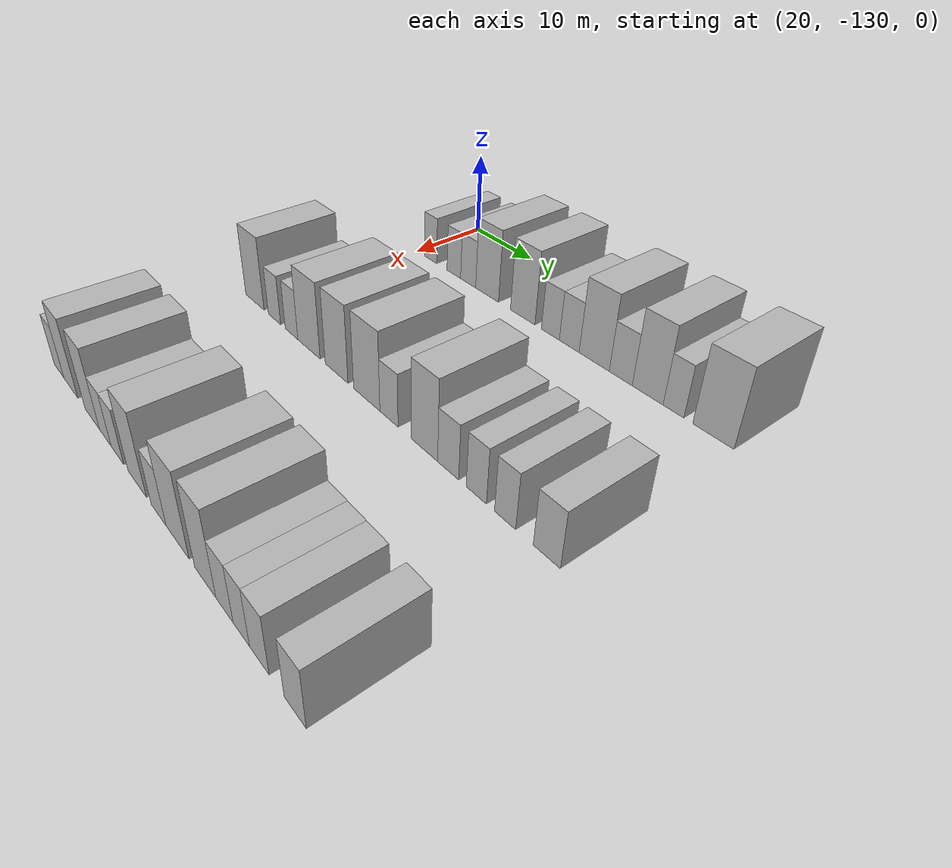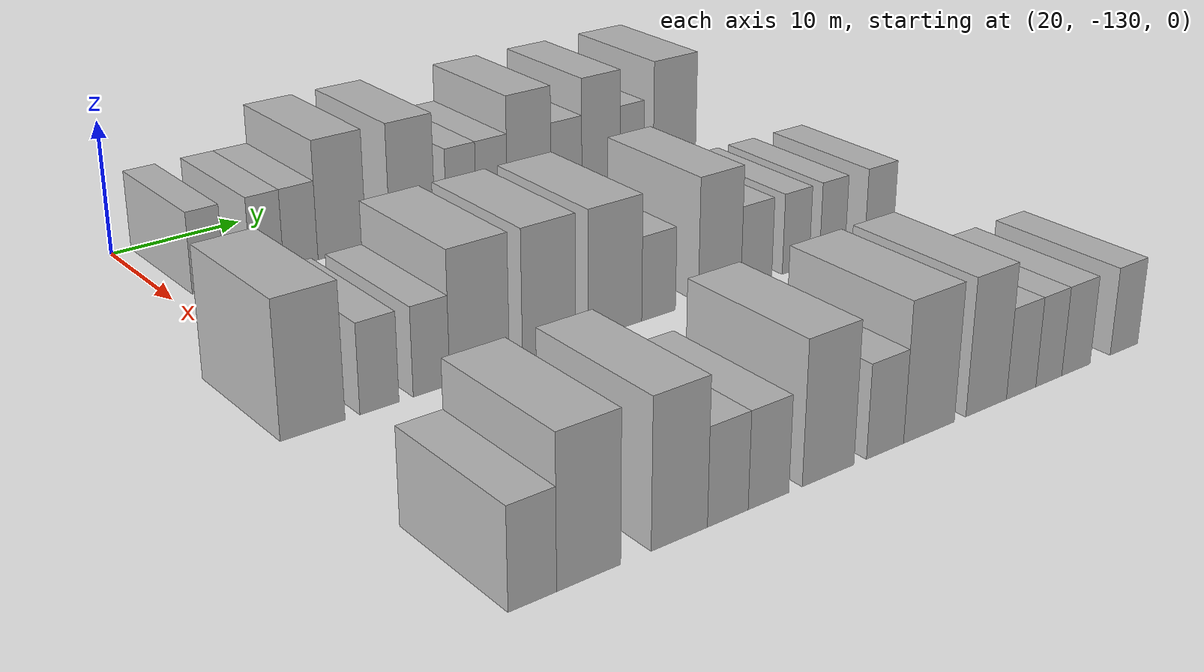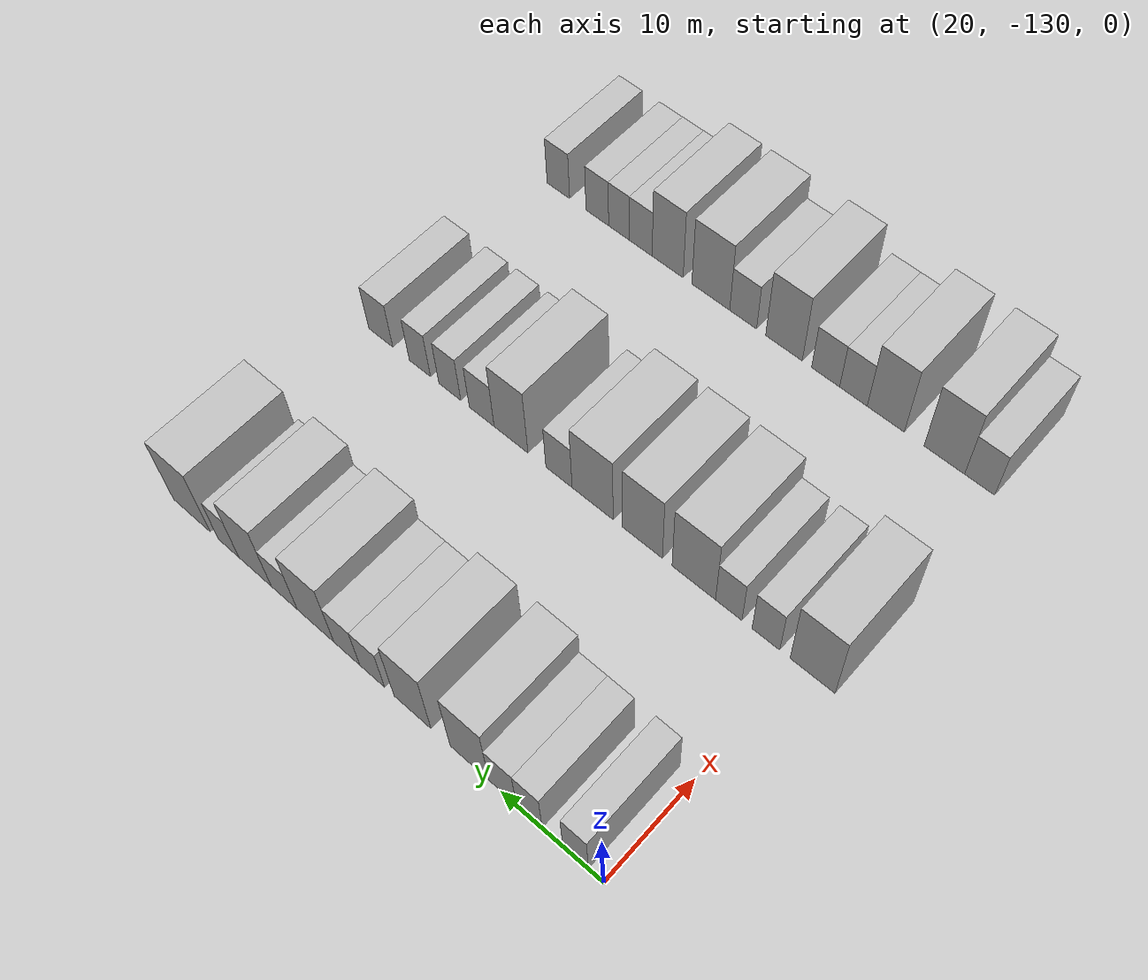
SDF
<sdf version="1.6">
 <world name="default">
  <model name="building_61">
   <static>1</static>
   <pose>25.0000 -127.3157 0 0.000000 0.000000 0.000000</pose>
   <link name="link">
    <pose>0 0 3.00 0 0 0</pose>
    <collision name="collision"><geometry><box><size>10.0000 2.4421 6.0000</size></box></geometry></collision>
    <visual name="visual">
     <cast_shadows>0</cast_shadows>
     <geometry><box><size>10.0000 2.4421 6.0000</size></box></geometry>
     <material>
      <script>
       <uri>model://HANNAS_wall/materials/scripts</uri>
       <uri>model://HANNAS_wall/materials/textures</uri>
       <name>vrc/HANNAS_wall</name>
      </script>
     </material>
    </visual>
   </link>
  </model>
  <model name="building_62">
   <static>1</static>
   <pose>25.0000 -122.8152 0 0.000000 0.000000 0.000000</pose>
   <link name="link">
    <pose>0 0 3.00 0 0 0</pose>
    <collision name="collision"><geometry><box><size>10.0000 2.5589 6.0000</size></box></geometry></collision>
    <visual name="visual">
     <cast_shadows>0</cast_shadows>
     <geometry><box><size>10.0000 2.5589 6.0000</size></box></geometry>
     <material>
      <script>
       <uri>model://HANNAS_wall/materials/scripts</uri>
       <uri>model://HANNAS_wall/materials/textures</uri>
       <name>vrc/HANNAS_wall</name>
      </script>
     </material>
    </visual>
   </link>
  </model>
  <model name="building_63">
   <static>1</static>
   <pose>25.0000 -120.1685 0 0.000000 0.000000 0.000000</pose>
   <link name="link">
    <pose>0 0 3.00 0 0 0</pose>
    <collision name="collision"><geometry><box><size>10.0000 2.7345 6.0000</size></box></geometry></collision>
    <visual name="visual">
     <cast_shadows>0</cast_shadows>
     <geometry><box><size>10.0000 2.7345 6.0000</size></box></geometry>
     <material>
      <script>
       <uri>model://HANNAS_wall/materials/scripts</uri>
       <uri>model://HANNAS_wall/materials/textures</uri>
       <name>vrc/HANNAS_wall</name>
      </script>
     </material>
    </visual>
   </link>
  </model>
  <model name="building_64">
   <static>1</static>
   <pose>25.0000 -116.8165 0 0.000000 0.000000 0.000000</pose>
   <link name="link">
    <pose>0 0 4.50 0 0 0</pose>
    <collision name="collision"><geometry><box><size>10.0000 3.9694 9.0000</size></box></geometry></collision>
    <visual name="visual">
     <cast_shadows>0</cast_shadows>
     <geometry><box><size>10.0000 3.9694 9.0000</size></box></geometry>
     <material>
      <script>
       <uri>model://HANNAS_wall/materials/scripts</uri>
       <uri>model://HANNAS_wall/materials/textures</uri>
       <name>vrc/HANNAS_wall</name>
      </script>
     </material>
    </visual>
   </link>
  </model>
  <model name="building_65">
   <static>1</static>
   <pose>25.0000 -110.8761 0 0.000000 0.000000 0.000000</pose>
   <link name="link">
    <pose>0 0 4.50 0 0 0</pose>
    <collision name="collision"><geometry><box><size>10.0000 3.9116 9.0000</size></box></geometry></collision>
    <visual name="visual">
     <cast_shadows>0</cast_shadows>
     <geometry><box><size>10.0000 3.9116 9.0000</size></box></geometry>
     <material>
      <script>
       <uri>model://HANNAS_wall/materials/scripts</uri>
       <uri>model://HANNAS_wall/materials/textures</uri>
       <name>vrc/HANNAS_wall</name>
      </script>
     </material>
    </visual>
   </link>
  </model>
  <model name="building_66">
   <static>1</static>
   <pose>25.0000 -106.5734 0 0.000000 0.000000 0.000000</pose>
   <link name="link">
    <pose>0 0 3.00 0 0 0</pose>
    <collision name="collision"><geometry><box><size>10.0000 2.6937 6.0000</size></box></geometry></collision>
    <visual name="visual">
     <cast_shadows>0</cast_shadows>
     <geometry><box><size>10.0000 2.6937 6.0000</size></box></geometry>
     <material>
      <script>
       <uri>model://HANNAS_wall/materials/scripts</uri>
       <uri>model://HANNAS_wall/materials/textures</uri>
       <name>vrc/HANNAS_wall</name>
      </script>
     </material>
    </visual>
   </link>
  </model>
  <model name="building_67">
   <static>1</static>
   <pose>25.0000 -103.7981 0 0.000000 0.000000 0.000000</pose>
   <link name="link">
    <pose>0 0 3.00 0 0 0</pose>
    <collision name="collision"><geometry><box><size>10.0000 2.8570 6.0000</size></box></geometry></collision>
    <visual name="visual">
     <cast_shadows>0</cast_shadows>
     <geometry><box><size>10.0000 2.8570 6.0000</size></box></geometry>
     <material>
      <script>
       <uri>model://HANNAS_wall/materials/scripts</uri>
       <uri>model://HANNAS_wall/materials/textures</uri>
       <name>vrc/HANNAS_wall</name>
      </script>
     </material>
    </visual>
   </link>
  </model>
  <model name="building_68">
   <static>1</static>
   <pose>25.0000 -100.3039 0 0.000000 0.000000 0.000000</pose>
   <link name="link">
    <pose>0 0 4.50 0 0 0</pose>
    <collision name="collision"><geometry><box><size>10.0000 4.1313 9.0000</size></box></geometry></collision>
    <visual name="visual">
     <cast_shadows>0</cast_shadows>
     <geometry><box><size>10.0000 4.1313 9.0000</size></box></geometry>
     <material>
      <script>
       <uri>model://HANNAS_wall/materials/scripts</uri>
       <uri>model://HANNAS_wall/materials/textures</uri>
       <name>vrc/HANNAS_wall</name>
      </script>
     </material>
    </visual>
   </link>
  </model>
  <model name="building_69">
   <static>1</static>
   <pose>25.0000 -96.7492 0 0.000000 0.000000 0.000000</pose>
   <link name="link">
    <pose>0 0 3.00 0 0 0</pose>
    <collision name="collision"><geometry><box><size>10.0000 2.9780 6.0000</size></box></geometry></collision>
    <visual name="visual">
     <cast_shadows>0</cast_shadows>
     <geometry><box><size>10.0000 2.9780 6.0000</size></box></geometry>
     <material>
      <script>
       <uri>model://HANNAS_wall/materials/scripts</uri>
       <uri>model://HANNAS_wall/materials/textures</uri>
       <name>vrc/HANNAS_wall</name>
      </script>
     </material>
    </visual>
   </link>
  </model>
  <model name="building_70">
   <static>1</static>
   <pose>25.0000 -93.3623 0 0.000000 0.000000 0.000000</pose>
   <link name="link">
    <pose>0 0 4.50 0 0 0</pose>
    <collision name="collision"><geometry><box><size>10.0000 3.7958 9.0000</size></box></geometry></collision>
    <visual name="visual">
     <cast_shadows>0</cast_shadows>
     <geometry><box><size>10.0000 3.7958 9.0000</size></box></geometry>
     <material>
      <script>
       <uri>model://HANNAS_wall/materials/scripts</uri>
       <uri>model://HANNAS_wall/materials/textures</uri>
       <name>vrc/HANNAS_wall</name>
      </script>
     </material>
    </visual>
   </link>
  </model>
  <model name="building_71">
   <static>1</static>
   <pose>25.0000 -90.2503 0 0.000000 0.000000 0.000000</pose>
   <link name="link">
    <pose>0 0 3.00 0 0 0</pose>
    <collision name="collision"><geometry><box><size>10.0000 2.4283 6.0000</size></box></geometry></collision>
    <visual name="visual">
     <cast_shadows>0</cast_shadows>
     <geometry><box><size>10.0000 2.4283 6.0000</size></box></geometry>
     <material>
      <script>
       <uri>model://HANNAS_wall/materials/scripts</uri>
       <uri>model://HANNAS_wall/materials/textures</uri>
       <name>vrc/HANNAS_wall</name>
      </script>
     </material>
    </visual>
   </link>
  </model>
  <model name="building_72">
   <static>1</static>
   <pose>25.0000 -85.7949 0 0.000000 0.000000 0.000000</pose>
   <link name="link">
    <pose>0 0 4.50 0 0 0</pose>
    <collision name="collision"><geometry><box><size>10.0000 4.4824 9.0000</size></box></geometry></collision>
    <visual name="visual">
     <cast_shadows>0</cast_shadows>
     <geometry><box><size>10.0000 4.4824 9.0000</size></box></geometry>
     <material>
      <script>
       <uri>model://HANNAS_wall/materials/scripts</uri>
       <uri>model://HANNAS_wall/materials/textures</uri>
       <name>vrc/HANNAS_wall</name>
      </script>
     </material>
    </visual>
   </link>
  </model>
  <model name="building_251">
   <static>1</static>
   <pose>47.0000 -131.4908 0 0.000000 0.000000 0.000000</pose>
   <link name="link">
    <pose>0 0 4.50 0 0 0</pose>
    <collision name="collision"><geometry><box><size>10.0000 4.2946 9.0000</size></box></geometry></collision>
    <visual name="visual">
     <cast_shadows>0</cast_shadows>
     <geometry><box><size>10.0000 4.2946 9.0000</size></box></geometry>
     <material>
      <script>
       <uri>model://HANNAS_wall/materials/scripts</uri>
       <uri>model://HANNAS_wall/materials/textures</uri>
       <name>vrc/HANNAS_wall</name>
      </script>
     </material>
    </visual>
   </link>
  </model>
  <model name="building_252">
   <static>1</static>
   <pose>47.0000 -126.9876 0 0.000000 0.000000 0.000000</pose>
   <link name="link">
    <pose>0 0 3.00 0 0 0</pose>
    <collision name="collision"><geometry><box><size>10.0000 2.7116 6.0000</size></box></geometry></collision>
    <visual name="visual">
     <cast_shadows>0</cast_shadows>
     <geometry><box><size>10.0000 2.7116 6.0000</size></box></geometry>
     <material>
      <script>
       <uri>model://HANNAS_wall/materials/scripts</uri>
       <uri>model://HANNAS_wall/materials/textures</uri>
       <name>vrc/HANNAS_wall</name>
      </script>
     </material>
    </visual>
   </link>
  </model>
  <model name="building_253">
   <static>1</static>
   <pose>47.0000 -123.3090 0 0.000000 0.000000 0.000000</pose>
   <link name="link">
    <pose>0 0 3.00 0 0 0</pose>
    <collision name="collision"><geometry><box><size>10.0000 2.6456 6.0000</size></box></geometry></collision>
    <visual name="visual">
     <cast_shadows>0</cast_shadows>
     <geometry><box><size>10.0000 2.6456 6.0000</size></box></geometry>
     <material>
      <script>
       <uri>model://HANNAS_wall/materials/scripts</uri>
       <uri>model://HANNAS_wall/materials/textures</uri>
       <name>vrc/HANNAS_wall</name>
      </script>
     </material>
    </visual>
   </link>
  </model>
  <model name="building_254">
   <static>1</static>
   <pose>47.0000 -119.7689 0 0.000000 0.000000 0.000000</pose>
   <link name="link">
    <pose>0 0 4.50 0 0 0</pose>
    <collision name="collision"><geometry><box><size>10.0000 4.4346 9.0000</size></box></geometry></collision>
    <visual name="visual">
     <cast_shadows>0</cast_shadows>
     <geometry><box><size>10.0000 4.4346 9.0000</size></box></geometry>
     <material>
      <script>
       <uri>model://HANNAS_wall/materials/scripts</uri>
       <uri>model://HANNAS_wall/materials/textures</uri>
       <name>vrc/HANNAS_wall</name>
      </script>
     </material>
    </visual>
   </link>
  </model>
  <model name="building_255">
   <static>1</static>
   <pose>47.0000 -114.4624 0 0.000000 0.000000 0.000000</pose>
   <link name="link">
    <pose>0 0 4.50 0 0 0</pose>
    <collision name="collision"><geometry><box><size>10.0000 4.1786 9.0000</size></box></geometry></collision>
    <visual name="visual">
     <cast_shadows>0</cast_shadows>
     <geometry><box><size>10.0000 4.1786 9.0000</size></box></geometry>
     <material>
      <script>
       <uri>model://HANNAS_wall/materials/scripts</uri>
       <uri>model://HANNAS_wall/materials/textures</uri>
       <name>vrc/HANNAS_wall</name>
      </script>
     </material>
    </visual>
   </link>
  </model>
  <model name="building_256">
   <static>1</static>
   <pose>47.0000 -109.1529 0 0.000000 0.000000 0.000000</pose>
   <link name="link">
    <pose>0 0 4.50 0 0 0</pose>
    <collision name="collision"><geometry><box><size>10.0000 4.4403 9.0000</size></box></geometry></collision>
    <visual name="visual">
     <cast_shadows>0</cast_shadows>
     <geometry><box><size>10.0000 4.4403 9.0000</size></box></geometry>
     <material>
      <script>
       <uri>model://HANNAS_wall/materials/scripts</uri>
       <uri>model://HANNAS_wall/materials/textures</uri>
       <name>vrc/HANNAS_wall</name>
      </script>
     </material>
    </visual>
   </link>
  </model>
  <model name="building_257">
   <static>1</static>
   <pose>47.0000 -105.4867 0 0.000000 0.000000 0.000000</pose>
   <link name="link">
    <pose>0 0 3.00 0 0 0</pose>
    <collision name="collision"><geometry><box><size>10.0000 2.8920 6.0000</size></box></geometry></collision>
    <visual name="visual">
     <cast_shadows>0</cast_shadows>
     <geometry><box><size>10.0000 2.8920 6.0000</size></box></geometry>
     <material>
      <script>
       <uri>model://HANNAS_wall/materials/scripts</uri>
       <uri>model://HANNAS_wall/materials/textures</uri>
       <name>vrc/HANNAS_wall</name>
      </script>
     </material>
    </visual>
   </link>
  </model>
  <model name="building_258">
   <static>1</static>
   <pose>47.0000 -100.1195 0 0.000000 0.000000 0.000000</pose>
   <link name="link">
    <pose>0 0 4.50 0 0 0</pose>
    <collision name="collision"><geometry><box><size>10.0000 3.8426 9.0000</size></box></geometry></collision>
    <visual name="visual">
     <cast_shadows>0</cast_shadows>
     <geometry><box><size>10.0000 3.8426 9.0000</size></box></geometry>
     <material>
      <script>
       <uri>model://HANNAS_wall/materials/scripts</uri>
       <uri>model://HANNAS_wall/materials/textures</uri>
       <name>vrc/HANNAS_wall</name>
      </script>
     </material>
    </visual>
   </link>
  </model>
  <model name="building_259">
   <static>1</static>
   <pose>47.0000 -96.7625 0 0.000000 0.000000 0.000000</pose>
   <link name="link">
    <pose>0 0 3.00 0 0 0</pose>
    <collision name="collision"><geometry><box><size>10.0000 2.8714 6.0000</size></box></geometry></collision>
    <visual name="visual">
     <cast_shadows>0</cast_shadows>
     <geometry><box><size>10.0000 2.8714 6.0000</size></box></geometry>
     <material>
      <script>
       <uri>model://HANNAS_wall/materials/scripts</uri>
       <uri>model://HANNAS_wall/materials/textures</uri>
       <name>vrc/HANNAS_wall</name>
      </script>
     </material>
    </visual>
   </link>
  </model>
  <model name="building_260">
   <static>1</static>
   <pose>47.0000 -93.0378 0 0.000000 0.000000 0.000000</pose>
   <link name="link">
    <pose>0 0 3.00 0 0 0</pose>
    <collision name="collision"><geometry><box><size>10.0000 2.5780 6.0000</size></box></geometry></collision>
    <visual name="visual">
     <cast_shadows>0</cast_shadows>
     <geometry><box><size>10.0000 2.5780 6.0000</size></box></geometry>
     <material>
      <script>
       <uri>model://HANNAS_wall/materials/scripts</uri>
       <uri>model://HANNAS_wall/materials/textures</uri>
       <name>vrc/HANNAS_wall</name>
      </script>
     </material>
    </visual>
   </link>
  </model>
  <model name="building_261">
   <static>1</static>
   <pose>47.0000 -89.4829 0 0.000000 0.000000 0.000000</pose>
   <link name="link">
    <pose>0 0 3.00 0 0 0</pose>
    <collision name="collision"><geometry><box><size>10.0000 2.5318 6.0000</size></box></geometry></collision>
    <visual name="visual">
     <cast_shadows>0</cast_shadows>
     <geometry><box><size>10.0000 2.5318 6.0000</size></box></geometry>
     <material>
      <script>
       <uri>model://HANNAS_wall/materials/scripts</uri>
       <uri>model://HANNAS_wall/materials/textures</uri>
       <name>vrc/HANNAS_wall</name>
      </script>
     </material>
    </visual>
   </link>
  </model>
  <model name="building_262">
   <static>1</static>
   <pose>47.0000 -84.7403 0 0.000000 0.000000 0.000000</pose>
   <link name="link">
    <pose>0 0 3.00 0 0 0</pose>
    <collision name="collision"><geometry><box><size>10.0000 2.9535 6.0000</size></box></geometry></collision>
    <visual name="visual">
     <cast_shadows>0</cast_shadows>
     <geometry><box><size>10.0000 2.9535 6.0000</size></box></geometry>
     <material>
      <script>
       <uri>model://HANNAS_wall/materials/scripts</uri>
       <uri>model://HANNAS_wall/materials/textures</uri>
       <name>vrc/HANNAS_wall</name>
      </script>
     </material>
    </visual>
   </link>
  </model>
  <model name="building_439">
   <static>1</static>
   <pose>69.0000 -131.5310 0 0.000000 0.000000 0.000000</pose>
   <link name="link">
    <pose>0 0 3.00 0 0 0</pose>
    <collision name="collision"><geometry><box><size>10.0000 2.9448 6.0000</size></box></geometry></collision>
    <visual name="visual">
     <cast_shadows>0</cast_shadows>
     <geometry><box><size>10.0000 2.9448 6.0000</size></box></geometry>
     <material>
      <script>
       <uri>model://HANNAS_wall/materials/scripts</uri>
       <uri>model://HANNAS_wall/materials/textures</uri>
       <name>vrc/HANNAS_wall</name>
      </script>
     </material>
    </visual>
   </link>
  </model>
  <model name="building_440">
   <static>1</static>
   <pose>69.0000 -128.0361 0 0.000000 0.000000 0.000000</pose>
   <link name="link">
    <pose>0 0 4.50 0 0 0</pose>
    <collision name="collision"><geometry><box><size>10.0000 4.0452 9.0000</size></box></geometry></collision>
    <visual name="visual">
     <cast_shadows>0</cast_shadows>
     <geometry><box><size>10.0000 4.0452 9.0000</size></box></geometry>
     <material>
      <script>
       <uri>model://HANNAS_wall/materials/scripts</uri>
       <uri>model://HANNAS_wall/materials/textures</uri>
       <name>vrc/HANNAS_wall</name>
      </script>
     </material>
    </visual>
   </link>
  </model>
  <model name="building_441">
   <static>1</static>
   <pose>69.0000 -122.1017 0 0.000000 0.000000 0.000000</pose>
   <link name="link">
    <pose>0 0 4.50 0 0 0</pose>
    <collision name="collision"><geometry><box><size>10.0000 3.8236 9.0000</size></box></geometry></collision>
    <visual name="visual">
     <cast_shadows>0</cast_shadows>
     <geometry><box><size>10.0000 3.8236 9.0000</size></box></geometry>
     <material>
      <script>
       <uri>model://HANNAS_wall/materials/scripts</uri>
       <uri>model://HANNAS_wall/materials/textures</uri>
       <name>vrc/HANNAS_wall</name>
      </script>
     </material>
    </visual>
   </link>
  </model>
  <model name="building_442">
   <static>1</static>
   <pose>69.0000 -118.7496 0 0.000000 0.000000 0.000000</pose>
   <link name="link">
    <pose>0 0 3.00 0 0 0</pose>
    <collision name="collision"><geometry><box><size>10.0000 2.8807 6.0000</size></box></geometry></collision>
    <visual name="visual">
     <cast_shadows>0</cast_shadows>
     <geometry><box><size>10.0000 2.8807 6.0000</size></box></geometry>
     <material>
      <script>
       <uri>model://HANNAS_wall/materials/scripts</uri>
       <uri>model://HANNAS_wall/materials/textures</uri>
       <name>vrc/HANNAS_wall</name>
      </script>
     </material>
    </visual>
   </link>
  </model>
  <model name="building_443">
   <static>1</static>
   <pose>69.0000 -115.8196 0 0.000000 0.000000 0.000000</pose>
   <link name="link">
    <pose>0 0 3.00 0 0 0</pose>
    <collision name="collision"><geometry><box><size>10.0000 2.9792 6.0000</size></box></geometry></collision>
    <visual name="visual">
     <cast_shadows>0</cast_shadows>
     <geometry><box><size>10.0000 2.9792 6.0000</size></box></geometry>
     <material>
      <script>
       <uri>model://HANNAS_wall/materials/scripts</uri>
       <uri>model://HANNAS_wall/materials/textures</uri>
       <name>vrc/HANNAS_wall</name>
      </script>
     </material>
    </visual>
   </link>
  </model>
  <model name="building_444">
   <static>1</static>
   <pose>69.0000 -111.3397 0 0.000000 0.000000 0.000000</pose>
   <link name="link">
    <pose>0 0 4.50 0 0 0</pose>
    <collision name="collision"><geometry><box><size>10.0000 3.9807 9.0000</size></box></geometry></collision>
    <visual name="visual">
     <cast_shadows>0</cast_shadows>
     <geometry><box><size>10.0000 3.9807 9.0000</size></box></geometry>
     <material>
      <script>
       <uri>model://HANNAS_wall/materials/scripts</uri>
       <uri>model://HANNAS_wall/materials/textures</uri>
       <name>vrc/HANNAS_wall</name>
      </script>
     </material>
    </visual>
   </link>
  </model>
  <model name="building_445">
   <static>1</static>
   <pose>69.0000 -106.8497 0 0.000000 0.000000 0.000000</pose>
   <link name="link">
    <pose>0 0 3.00 0 0 0</pose>
    <collision name="collision"><geometry><box><size>10.0000 2.9993 6.0000</size></box></geometry></collision>
    <visual name="visual">
     <cast_shadows>0</cast_shadows>
     <geometry><box><size>10.0000 2.9993 6.0000</size></box></geometry>
     <material>
      <script>
       <uri>model://HANNAS_wall/materials/scripts</uri>
       <uri>model://HANNAS_wall/materials/textures</uri>
       <name>vrc/HANNAS_wall</name>
      </script>
     </material>
    </visual>
   </link>
  </model>
  <model name="building_446">
   <static>1</static>
   <pose>69.0000 -103.2088 0 0.000000 0.000000 0.000000</pose>
   <link name="link">
    <pose>0 0 4.50 0 0 0</pose>
    <collision name="collision"><geometry><box><size>10.0000 4.2824 9.0000</size></box></geometry></collision>
    <visual name="visual">
     <cast_shadows>0</cast_shadows>
     <geometry><box><size>10.0000 4.2824 9.0000</size></box></geometry>
     <material>
      <script>
       <uri>model://HANNAS_wall/materials/scripts</uri>
       <uri>model://HANNAS_wall/materials/textures</uri>
       <name>vrc/HANNAS_wall</name>
      </script>
     </material>
    </visual>
   </link>
  </model>
  <model name="building_447">
   <static>1</static>
   <pose>69.0000 -98.2643 0 0.000000 0.000000 0.000000</pose>
   <link name="link">
    <pose>0 0 4.50 0 0 0</pose>
    <collision name="collision"><geometry><box><size>10.0000 3.6067 9.0000</size></box></geometry></collision>
    <visual name="visual">
     <cast_shadows>0</cast_shadows>
     <geometry><box><size>10.0000 3.6067 9.0000</size></box></geometry>
     <material>
      <script>
       <uri>model://HANNAS_wall/materials/scripts</uri>
       <uri>model://HANNAS_wall/materials/textures</uri>
       <name>vrc/HANNAS_wall</name>
      </script>
     </material>
    </visual>
   </link>
  </model>
  <model name="building_448">
   <static>1</static>
   <pose>69.0000 -95.1094 0 0.000000 0.000000 0.000000</pose>
   <link name="link">
    <pose>0 0 3.00 0 0 0</pose>
    <collision name="collision"><geometry><box><size>10.0000 2.7032 6.0000</size></box></geometry></collision>
    <visual name="visual">
     <cast_shadows>0</cast_shadows>
     <geometry><box><size>10.0000 2.7032 6.0000</size></box></geometry>
     <material>
      <script>
       <uri>model://HANNAS_wall/materials/scripts</uri>
       <uri>model://HANNAS_wall/materials/textures</uri>
       <name>vrc/HANNAS_wall</name>
      </script>
     </material>
    </visual>
   </link>
  </model>
  <model name="building_449">
   <static>1</static>
   <pose>69.0000 -92.5349 0 0.000000 0.000000 0.000000</pose>
   <link name="link">
    <pose>0 0 3.00 0 0 0</pose>
    <collision name="collision"><geometry><box><size>10.0000 2.4457 6.0000</size></box></geometry></collision>
    <visual name="visual">
     <cast_shadows>0</cast_shadows>
     <geometry><box><size>10.0000 2.4457 6.0000</size></box></geometry>
     <material>
      <script>
       <uri>model://HANNAS_wall/materials/scripts</uri>
       <uri>model://HANNAS_wall/materials/textures</uri>
       <name>vrc/HANNAS_wall</name>
      </script>
     </material>
    </visual>
   </link>
  </model>
  <model name="building_450">
   <static>1</static>
   <pose>69.0000 -89.9422 0 0.000000 0.000000 0.000000</pose>
   <link name="link">
    <pose>0 0 3.00 0 0 0</pose>
    <collision name="collision"><geometry><box><size>10.0000 2.7397 6.0000</size></box></geometry></collision>
    <visual name="visual">
     <cast_shadows>0</cast_shadows>
     <geometry><box><size>10.0000 2.7397 6.0000</size></box></geometry>
     <material>
      <script>
       <uri>model://HANNAS_wall/materials/scripts</uri>
       <uri>model://HANNAS_wall/materials/textures</uri>
       <name>vrc/HANNAS_wall</name>
      </script>
     </material>
    </visual>
   </link>
  </model>
  <model name="building_451">
   <static>1</static>
   <pose>69.0000 -85.1822 0 0.000000 0.000000 0.000000</pose>
   <link name="link">
    <pose>0 0 3.00 0 0 0</pose>
    <collision name="collision"><geometry><box><size>10.0000 2.7802 6.0000</size></box></geometry></collision>
    <visual name="visual">
     <cast_shadows>0</cast_shadows>
     <geometry><box><size>10.0000 2.7802 6.0000</size></box></geometry>
     <material>
      <script>
       <uri>model://HANNAS_wall/materials/scripts</uri>
       <uri>model://HANNAS_wall/materials/textures</uri>
       <name>vrc/HANNAS_wall</name>
      </script>
     </material>
    </visual>
   </link>
  </model>
 </world>
</sdf>
